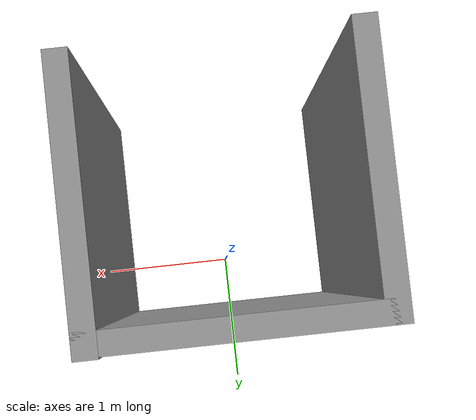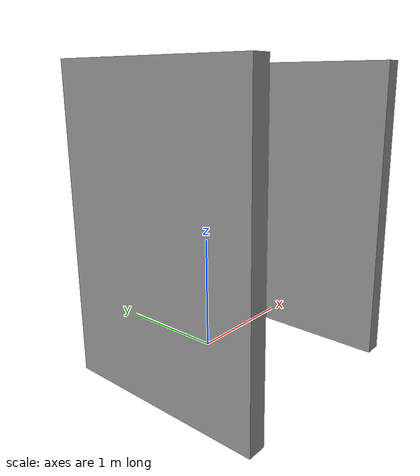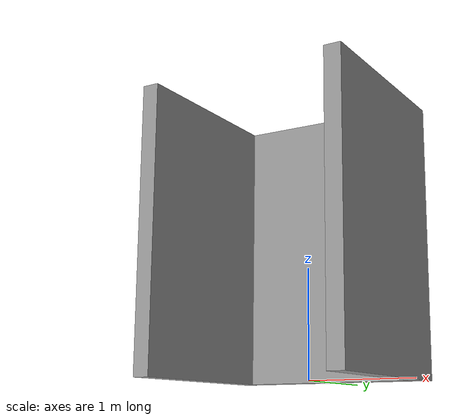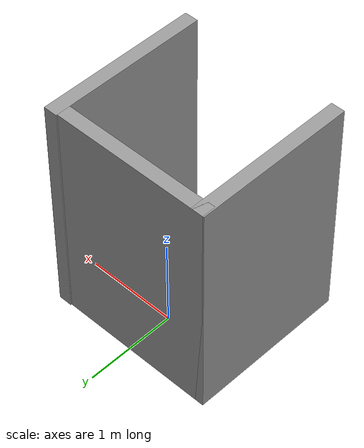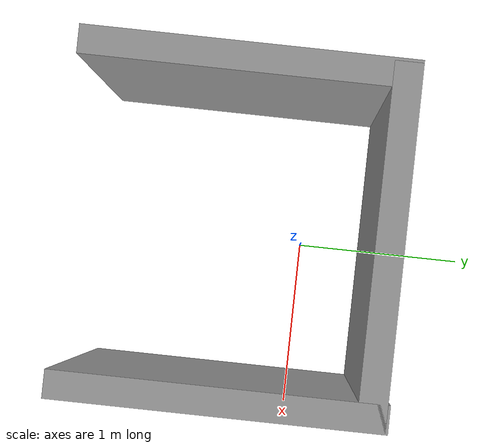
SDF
<?xml version='1.0'?>
<sdf version='1.7'>
  <model name='ur3e-world'>
    <pose>-0.006758 -0.350425 0 0 -0 0</pose>
    <link name='Wall_0'>
      <collision name='Wall_0_Collision'>
        <geometry>
          <box>
            <size>1.75 0.15 2.5</size>
          </box>
        </geometry>
        <pose>0 0 1.25 0 -0 0</pose>
      </collision>
      <visual name='Wall_0_Visual'>
        <pose>0 0 1.25 0 -0 0</pose>
        <geometry>
          <box>
            <size>1.75 0.15 2.5</size>
          </box>
        </geometry>
        <material>
          <script>
            <uri>file://media/materials/scripts/gazebo.material</uri>
            <name>Gazebo/Grey</name>
          </script>
          <ambient>1 1 1 1</ambient>
        </material>
        <meta>
          <layer>0</layer>
        </meta>
      </visual>
      <pose>0.873488 0.006285 0 0 -0 -1.5708</pose>
    </link>
    <link name='Wall_2'>
      <collision name='Wall_2_Collision'>
        <geometry>
          <box>
            <size>1.88185 0.15 2.5</size>
          </box>
        </geometry>
        <pose>0 0 1.25 0 -0 0</pose>
      </collision>
      <visual name='Wall_2_Visual'>
        <pose>0 0 1.25 0 -0 0</pose>
        <geometry>
          <box>
            <size>1.88185 0.15 2.5</size>
          </box>
        </geometry>
        <material>
          <script>
            <uri>file://media/materials/scripts/gazebo.material</uri>
            <name>Gazebo/Grey</name>
          </script>
          <ambient>1 1 1 1</ambient>
        </material>
        <meta>
          <layer>0</layer>
        </meta>
      </visual>
      <pose>0.007561 0.793715 0 0 -0 0</pose>
    </link>
    <link name='Wall_4'>
      <collision name='Wall_4_Collision'>
        <geometry>
          <box>
            <size>1.75 0.15 2.5</size>
          </box>
        </geometry>
        <pose>0 0 1.25 0 -0 0</pose>
      </collision>
      <visual name='Wall_4_Visual'>
        <pose>0 0 1.25 0 -0 0</pose>
        <geometry>
          <box>
            <size>1.75 0.15 2.5</size>
          </box>
        </geometry>
        <material>
          <script>
            <uri>file://media/materials/scripts/gazebo.material</uri>
            <name>Gazebo/Grey</name>
          </script>
          <ambient>1 1 1 1</ambient>
        </material>
        <meta>
          <layer>0</layer>
        </meta>
      </visual>
      <pose>-0.873488 -0.006285 0 0 -0 -1.5708</pose>
    </link>
    <static>1</static>
  </model>
</sdf>
